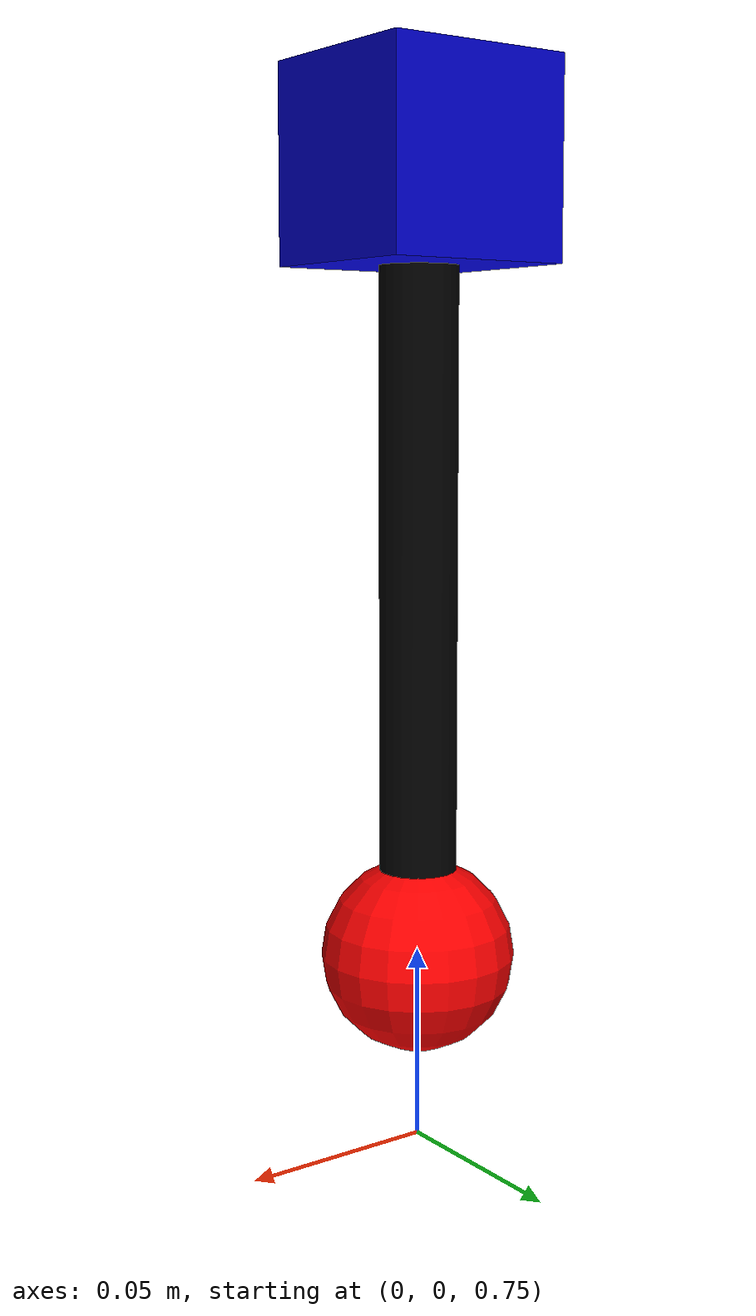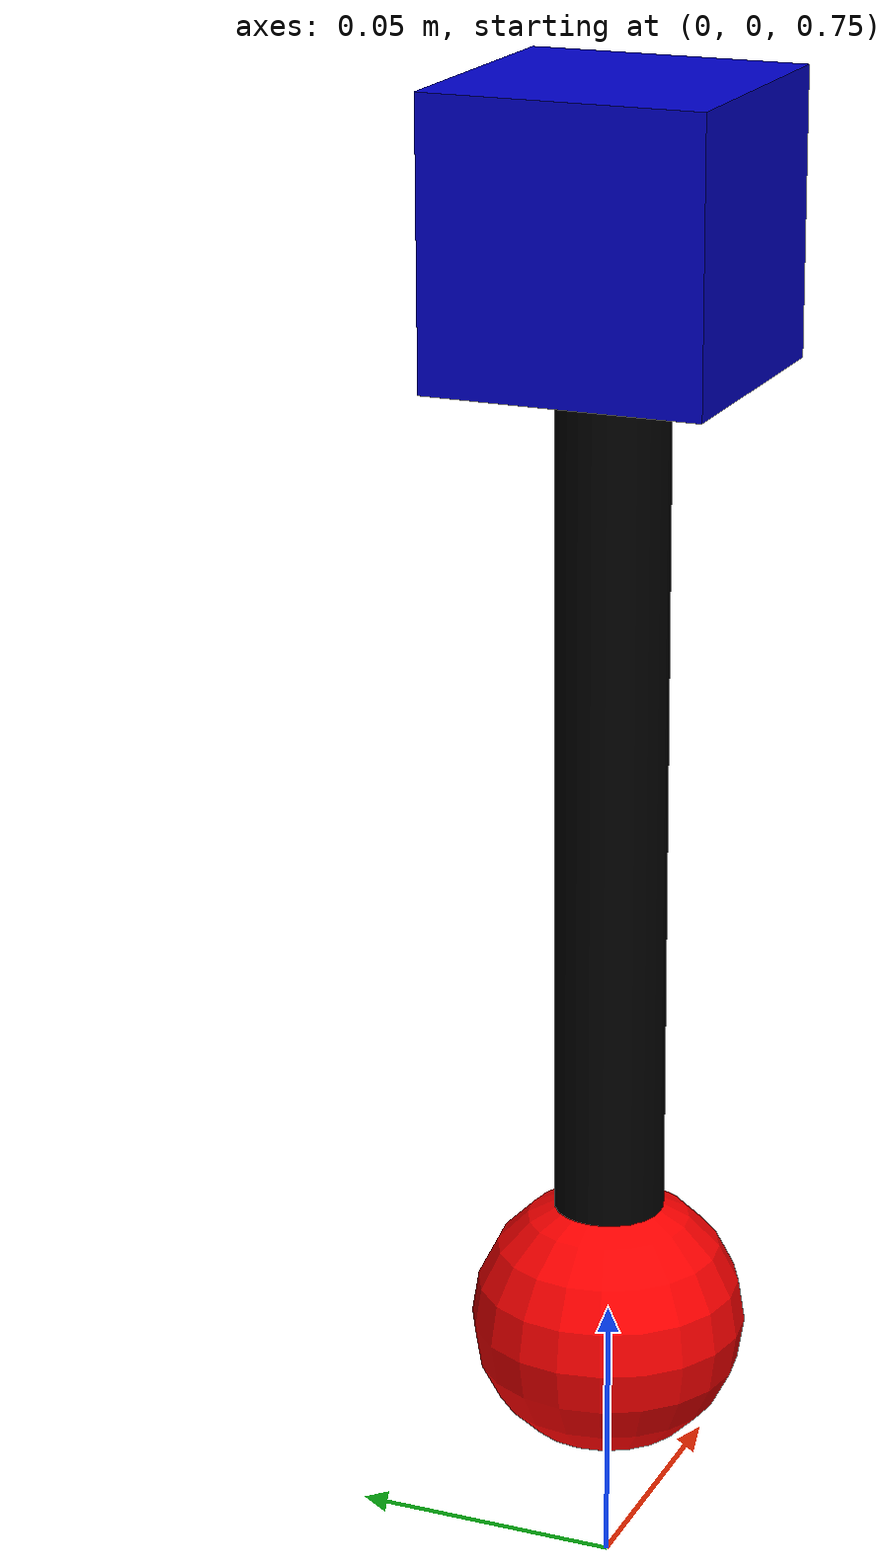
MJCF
<mujoco model="cart_pole">
  <compiler angle="radian" inertiafromgeom="false"/>
  <option timestep="0.001" integrator="implicitfast">
    <flag energy="enable" frictionloss="disable" clampctrl="disable" contact="disable"/>
  </option>

  <worldbody>
    <body name="cart" pos="0 0 1">
      <inertial pos="0 0 0" mass="0.466" diaginertia="0.00019417 0.00019417 0.00019417"/>
      <joint name="cart_joint" pos="0 0 0" axis="1 0 0" type="slide" limited="false" frictionloss="0.0408"/>
      <geom size="0.025 0.025 0.025" pos="0 0 0" type="box" rgba="0 0 0.8 1"/>
      <body name="pole" pos="0 0 0">
        <inertial pos="0 0 -0.1005" mass="0.06" diaginertia="0.0002035 0.0002035 0.000003"/>
        <joint name="pole_joint" pos="0 0 0" axis="0 1 0" limited="false" frictionloss="0.0020"/>
        <geom size="0.01 0.1005" pos="0 0 -0.1005" type="cylinder" rgba="0 0 0 1"/>
        <body name="sphere" pos="0 0 -0.201">
          <inertial pos="0 0 0" mass="0.012" diaginertia="0.000003 0.000003 0.000003"/>
          <geom size="0.025" pos="0 0 0" rgba="1 0 0 1"/>
        </body>
      </body>
    </body>
  </worldbody>

  <actuator>
    <motor joint="cart_joint"/>
    <motor joint="pole_joint"/>
  </actuator>

</mujoco>
